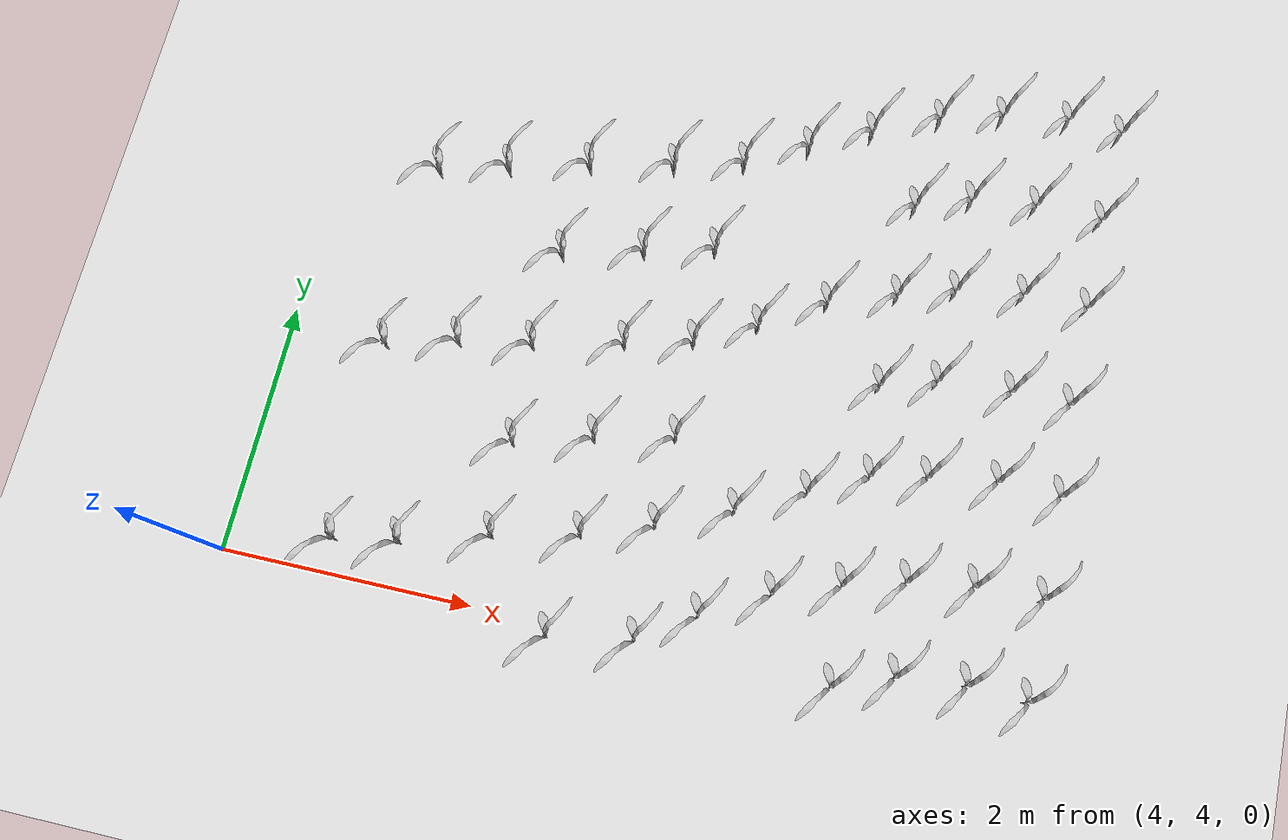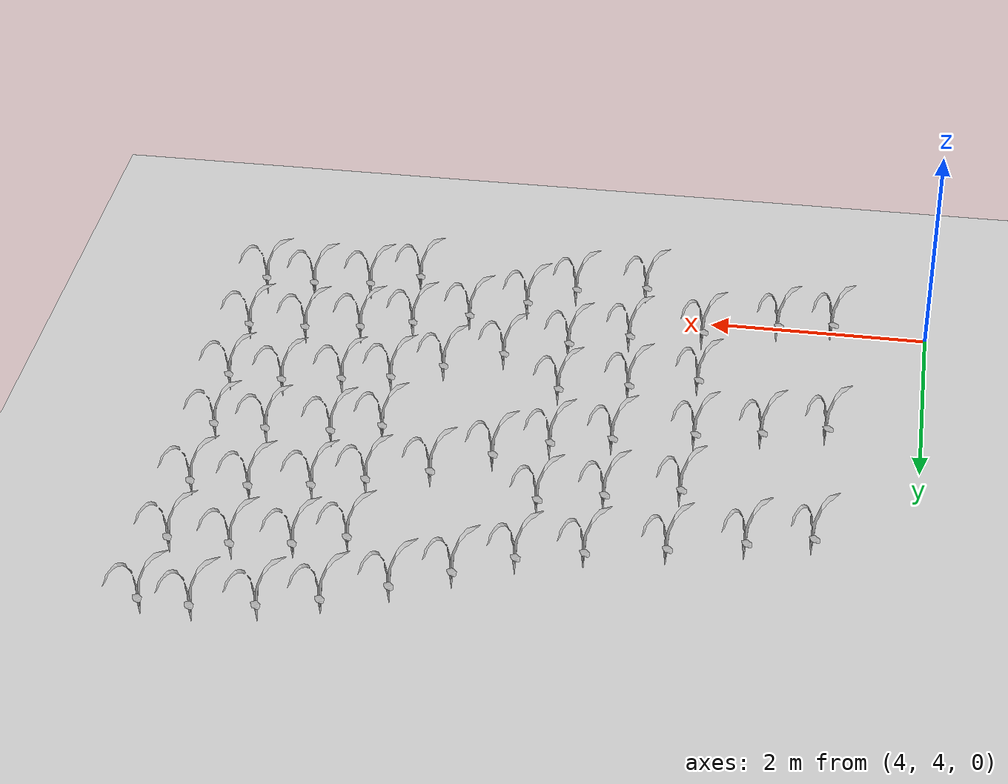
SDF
<sdf version="1.7">
 <world name="default">
  <model name="ground_plane">
   <static>1</static>
   <link name="link">
    <collision name="collision">
     <geometry><plane><normal>0 0 1</normal><size>100 100</size></plane></geometry>
     <surface><friction><ode><mu>100</mu><mu2>50</mu2></ode></friction></surface>
    </collision>
    <visual name="visual">
     <cast_shadows>0</cast_shadows>
     <geometry><plane><normal>0 0 1</normal><size>100 100</size></plane></geometry>
     <material>
      <script><uri>file://media/materials/scripts/gazebo.material</uri><name>Gazebo/Grey</name></script>
     </material>
    </visual>
   </link>
  </model>
  <model name="field_row_full_double">
   <model name="maize_02_clone_106">
    <pose>-0.685713 0.61283 0.000249 0 -0 0</pose>
    <link name="maize_02_link">
     <inertial>
      <pose>0 0 0.01 0 -0 0</pose>
      <mass>0.3</mass>
      <inertia>
       <ixx>0.00334167</ixx>
       <ixy>0</ixy>
       <ixz>0</ixz>
       <iyy>0.00334167</iyy>
       <iyz>0</iyz>
       <izz>1.66667e-05</izz>
      </inertia>
      <pose>0 0 0.1 0 -0 0</pose>
     </inertial>
     <collision name="collision">
      <pose>0 0 0.2 0 -0 0</pose>
      <geometry><box><size>0.02 0.02 0.4</size></box></geometry>
      <surface><friction><ode><mu>10</mu><mu2>10</mu2></ode></friction></surface>
     </collision>
     <visual name="visual">
      <geometry>
       <mesh><uri>model://maize_02/meshes/maize_02.dae</uri><scale>0.683166 0.683166 0.683166</scale></mesh>
      </geometry>
     </visual>
    </link>
   </model>
   <model name="maize_02_clone_107">
    <pose>-0.190713 0.69383 0.000249 0 -0 0</pose>
    <link name="maize_02_link">
     <inertial>
      <pose>0 0 0.01 0 -0 0</pose>
      <mass>0.3</mass>
      <inertia>
       <ixx>0.00334167</ixx>
       <ixy>0</ixy>
       <ixz>0</ixz>
       <iyy>0.00334167</iyy>
       <iyz>0</iyz>
       <izz>1.66667e-05</izz>
      </inertia>
      <pose>0 0 0.1 0 -0 0</pose>
     </inertial>
     <collision name="collision">
      <pose>0 0 0.2 0 -0 0</pose>
      <geometry><box><size>0.02 0.02 0.4</size></box></geometry>
      <surface><friction><ode><mu>10</mu><mu2>10</mu2></ode></friction></surface>
     </collision>
     <visual name="visual">
      <geometry>
       <mesh><uri>model://maize_02/meshes/maize_02.dae</uri><scale>0.683166 0.683166 0.683166</scale></mesh>
      </geometry>
     </visual>
    </link>
   </model>
   <model name="maize_02_clone_108">
    <pose>0.484286 0.89183 0.000249 0 -0 0</pose>
    <link name="maize_02_link">
     <inertial>
      <pose>0 0 0.01 0 -0 0</pose>
      <mass>0.3</mass>
      <inertia>
       <ixx>0.00334167</ixx>
       <ixy>0</ixy>
       <ixz>0</ixz>
       <iyy>0.00334167</iyy>
       <iyz>0</iyz>
       <izz>1.66667e-05</izz>
      </inertia>
      <pose>0 0 0.1 0 -0 0</pose>
     </inertial>
     <collision name="collision">
      <pose>0 0 0.2 0 -0 0</pose>
      <geometry><box><size>0.02 0.02 0.4</size></box></geometry>
      <surface><friction><ode><mu>10</mu><mu2>10</mu2></ode></friction></surface>
     </collision>
     <visual name="visual">
      <geometry>
       <mesh><uri>model://maize_02/meshes/maize_02.dae</uri><scale>0.683166 0.683166 0.683166</scale></mesh>
      </geometry>
     </visual>
    </link>
   </model>
   <model name="maize_02_clone_109">
    <pose>0.457287 1.62983 0.000249 0 -0 0</pose>
    <link name="maize_02_link">
     <inertial>
      <pose>0 0 0.01 0 -0 0</pose>
      <mass>0.3</mass>
      <inertia>
       <ixx>0.00334167</ixx>
       <ixy>0</ixy>
       <ixz>0</ixz>
       <iyy>0.00334167</iyy>
       <iyz>0</iyz>
       <izz>1.66667e-05</izz>
      </inertia>
      <pose>0 0 0.1 0 -0 0</pose>
     </inertial>
     <collision name="collision">
      <pose>0 0 0.2 0 -0 0</pose>
      <geometry><box><size>0.02 0.02 0.4</size></box></geometry>
      <surface><friction><ode><mu>10</mu><mu2>10</mu2></ode></friction></surface>
     </collision>
     <visual name="visual">
      <geometry>
       <mesh><uri>model://maize_02/meshes/maize_02.dae</uri><scale>0.683166 0.683166 0.683166</scale></mesh>
      </geometry>
     </visual>
    </link>
   </model>
   <model name="maize_02_clone_116">
    <pose>0.412287 2.42183 0.000249 0 -0 0</pose>
    <link name="maize_02_link">
     <inertial>
      <pose>0 0 0.01 0 -0 0</pose>
      <mass>0.3</mass>
      <inertia>
       <ixx>0.00334167</ixx>
       <ixy>0</ixy>
       <ixz>0</ixz>
       <iyy>0.00334167</iyy>
       <iyz>0</iyz>
       <izz>1.66667e-05</izz>
      </inertia>
      <pose>0 0 0.1 0 -0 0</pose>
     </inertial>
     <collision name="collision">
      <pose>0 0 0.2 0 -0 0</pose>
      <geometry><box><size>0.02 0.02 0.4</size></box></geometry>
      <surface><friction><ode><mu>10</mu><mu2>10</mu2></ode></friction></surface>
     </collision>
     <visual name="visual">
      <geometry>
       <mesh><uri>model://maize_02/meshes/maize_02.dae</uri><scale>0.683166 0.683166 0.683166</scale></mesh>
      </geometry>
     </visual>
    </link>
   </model>
   <model name="maize_02_clone_117">
    <pose>-0.163713 2.32283 0.000249 0 -0 0</pose>
    <link name="maize_02_link">
     <inertial>
      <pose>0 0 0.01 0 -0 0</pose>
      <mass>0.3</mass>
      <inertia>
       <ixx>0.00334167</ixx>
       <ixy>0</ixy>
       <ixz>0</ixz>
       <iyy>0.00334167</iyy>
       <iyz>0</iyz>
       <izz>1.66667e-05</izz>
      </inertia>
      <pose>0 0 0.1 0 -0 0</pose>
     </inertial>
     <collision name="collision">
      <pose>0 0 0.2 0 -0 0</pose>
      <geometry><box><size>0.02 0.02 0.4</size></box></geometry>
      <surface><friction><ode><mu>10</mu><mu2>10</mu2></ode></friction></surface>
     </collision>
     <visual name="visual">
      <geometry>
       <mesh><uri>model://maize_02/meshes/maize_02.dae</uri><scale>0.683166 0.683166 0.683166</scale></mesh>
      </geometry>
     </visual>
    </link>
   </model>
   <model name="maize_02_clone_118">
    <pose>-0.721713 2.17883 0.000249 0 -0 0</pose>
    <link name="maize_02_link">
     <inertial>
      <pose>0 0 0.01 0 -0 0</pose>
      <mass>0.3</mass>
      <inertia>
       <ixx>0.00334167</ixx>
       <ixy>0</ixy>
       <ixz>0</ixz>
       <iyy>0.00334167</iyy>
       <iyz>0</iyz>
       <izz>1.66667e-05</izz>
      </inertia>
      <pose>0 0 0.1 0 -0 0</pose>
     </inertial>
     <collision name="collision">
      <pose>0 0 0.2 0 -0 0</pose>
      <geometry><box><size>0.02 0.02 0.4</size></box></geometry>
      <surface><friction><ode><mu>10</mu><mu2>10</mu2></ode></friction></surface>
     </collision>
     <visual name="visual">
      <geometry>
       <mesh><uri>model://maize_02/meshes/maize_02.dae</uri><scale>0.683166 0.683166 0.683166</scale></mesh>
      </geometry>
     </visual>
    </link>
   </model>
   <model name="maize_02_clone_130">
    <pose>0.457288 3.20483 0.000249 0 -0 0</pose>
    <link name="maize_02_link">
     <inertial>
      <pose>0 0 0.01 0 -0 0</pose>
      <mass>0.3</mass>
      <inertia>
       <ixx>0.00334167</ixx>
       <ixy>0</ixy>
       <ixz>0</ixz>
       <iyy>0.00334167</iyy>
       <iyz>0</iyz>
       <izz>1.66667e-05</izz>
      </inertia>
      <pose>0 0 0.1 0 -0 0</pose>
     </inertial>
     <collision name="collision">
      <pose>0 0 0.2 0 -0 0</pose>
      <geometry><box><size>0.02 0.02 0.4</size></box></geometry>
      <surface><friction><ode><mu>10</mu><mu2>10</mu2></ode></friction></surface>
     </collision>
     <visual name="visual">
      <geometry>
       <mesh><uri>model://maize_02/meshes/maize_02.dae</uri><scale>0.683166 0.683166 0.683166</scale></mesh>
      </geometry>
     </visual>
    </link>
   </model>
   <model name="maize_02_clone_131">
    <pose>0.493288 3.98783 0.000249 0 -0 0</pose>
    <link name="maize_02_link">
     <inertial>
      <pose>0 0 0.01 0 -0 0</pose>
      <mass>0.3</mass>
      <inertia>
       <ixx>0.00334167</ixx>
       <ixy>0</ixy>
       <ixz>0</ixz>
       <iyy>0.00334167</iyy>
       <iyz>0</iyz>
       <izz>1.66667e-05</izz>
      </inertia>
      <pose>0 0 0.1 0 -0 0</pose>
     </inertial>
     <collision name="collision">
      <pose>0 0 0.2 0 -0 0</pose>
      <geometry><box><size>0.02 0.02 0.4</size></box></geometry>
      <surface><friction><ode><mu>10</mu><mu2>10</mu2></ode></friction></surface>
     </collision>
     <visual name="visual">
      <geometry>
       <mesh><uri>model://maize_02/meshes/maize_02.dae</uri><scale>0.683166 0.683166 0.683166</scale></mesh>
      </geometry>
     </visual>
    </link>
   </model>
   <model name="maize_02_clone_132">
    <pose>-0.145712 3.82583 0.000249 0 -0 0</pose>
    <link name="maize_02_link">
     <inertial>
      <pose>0 0 0.01 0 -0 0</pose>
      <mass>0.3</mass>
      <inertia>
       <ixx>0.00334167</ixx>
       <ixy>0</ixy>
       <ixz>0</ixz>
       <iyy>0.00334167</iyy>
       <iyz>0</iyz>
       <izz>1.66667e-05</izz>
      </inertia>
      <pose>0 0 0.1 0 -0 0</pose>
     </inertial>
     <collision name="collision">
      <pose>0 0 0.2 0 -0 0</pose>
      <geometry><box><size>0.02 0.02 0.4</size></box></geometry>
      <surface><friction><ode><mu>10</mu><mu2>10</mu2></ode></friction></surface>
     </collision>
     <visual name="visual">
      <geometry>
       <mesh><uri>model://maize_02/meshes/maize_02.dae</uri><scale>0.683166 0.683166 0.683166</scale></mesh>
      </geometry>
     </visual>
    </link>
   </model>
   <model name="maize_02_clone_133">
    <pose>-0.694712 3.69083 0.000249 0 -0 0</pose>
    <link name="maize_02_link">
     <inertial>
      <pose>0 0 0.01 0 -0 0</pose>
      <mass>0.3</mass>
      <inertia>
       <ixx>0.00334167</ixx>
       <ixy>0</ixy>
       <ixz>0</ixz>
       <iyy>0.00334167</iyy>
       <iyz>0</iyz>
       <izz>1.66667e-05</izz>
      </inertia>
      <pose>0 0 0.1 0 -0 0</pose>
     </inertial>
     <collision name="collision">
      <pose>0 0 0.2 0 -0 0</pose>
      <geometry><box><size>0.02 0.02 0.4</size></box></geometry>
      <surface><friction><ode><mu>10</mu><mu2>10</mu2></ode></friction></surface>
     </collision>
     <visual name="visual">
      <geometry>
       <mesh><uri>model://maize_02/meshes/maize_02.dae</uri><scale>0.683166 0.683166 0.683166</scale></mesh>
      </geometry>
     </visual>
    </link>
   </model>
   <model name="maize_02_clone_148">
    <pose>4.64514 0.576773 0.000249 0 -0 0</pose>
    <link name="maize_02_link">
     <inertial>
      <pose>0 0 0.01 0 -0 0</pose>
      <mass>0.3</mass>
      <inertia>
       <ixx>0.00334167</ixx>
       <ixy>0</ixy>
       <ixz>0</ixz>
       <iyy>0.00334167</iyy>
       <iyz>0</iyz>
       <izz>1.66667e-05</izz>
      </inertia>
      <pose>0 0 0.1 0 -0 0</pose>
     </inertial>
     <collision name="collision">
      <pose>0 0 0.2 0 -0 0</pose>
      <geometry><box><size>0.02 0.02 0.4</size></box></geometry>
      <surface><friction><ode><mu>10</mu><mu2>10</mu2></ode></friction></surface>
     </collision>
     <visual name="visual">
      <geometry>
       <mesh><uri>model://maize_02/meshes/maize_02.dae</uri><scale>0.683166 0.683166 0.683166</scale></mesh>
      </geometry>
     </visual>
    </link>
   </model>
   <model name="maize_02_clone_149">
    <pose>4.18693 0.594063 0.000249 0 -0 0</pose>
    <link name="maize_02_link">
     <inertial>
      <pose>0 0 0.01 0 -0 0</pose>
      <mass>0.3</mass>
      <inertia>
       <ixx>0.00334167</ixx>
       <ixy>0</ixy>
       <ixz>0</ixz>
       <iyy>0.00334167</iyy>
       <iyz>0</iyz>
       <izz>1.66667e-05</izz>
      </inertia>
      <pose>0 0 0.1 0 -0 0</pose>
     </inertial>
     <collision name="collision">
      <pose>0 0 0.2 0 -0 0</pose>
      <geometry><box><size>0.02 0.02 0.4</size></box></geometry>
      <surface><friction><ode><mu>10</mu><mu2>10</mu2></ode></friction></surface>
     </collision>
     <visual name="visual">
      <geometry>
       <mesh><uri>model://maize_02/meshes/maize_02.dae</uri><scale>0.683166 0.683166 0.683166</scale></mesh>
      </geometry>
     </visual>
    </link>
   </model>
   <model name="maize_02_clone_150">
    <pose>3.65957 0.533546 0.000249 0 -0 0</pose>
    <link name="maize_02_link">
     <inertial>
      <pose>0 0 0.01 0 -0 0</pose>
      <mass>0.3</mass>
      <inertia>
       <ixx>0.00334167</ixx>
       <ixy>0</ixy>
       <ixz>0</ixz>
       <iyy>0.00334167</iyy>
       <iyz>0</iyz>
       <izz>1.66667e-05</izz>
      </inertia>
      <pose>0 0 0.1 0 -0 0</pose>
     </inertial>
     <collision name="collision">
      <pose>0 0 0.2 0 -0 0</pose>
      <geometry><box><size>0.02 0.02 0.4</size></box></geometry>
      <surface><friction><ode><mu>10</mu><mu2>10</mu2></ode></friction></surface>
     </collision>
     <visual name="visual">
      <geometry>
       <mesh><uri>model://maize_02/meshes/maize_02.dae</uri><scale>0.683166 0.683166 0.683166</scale></mesh>
      </geometry>
     </visual>
    </link>
   </model>
   <model name="maize_02_clone_151">
    <pose>3.21001 0.360639 0.000249 0 -0 0</pose>
    <link name="maize_02_link">
     <inertial>
      <pose>0 0 0.01 0 -0 0</pose>
      <mass>0.3</mass>
      <inertia>
       <ixx>0.00334167</ixx>
       <ixy>0</ixy>
       <ixz>0</ixz>
       <iyy>0.00334167</iyy>
       <iyz>0</iyz>
       <izz>1.66667e-05</izz>
      </inertia>
      <pose>0 0 0.1 0 -0 0</pose>
     </inertial>
     <collision name="collision">
      <pose>0 0 0.2 0 -0 0</pose>
      <geometry><box><size>0.02 0.02 0.4</size></box></geometry>
      <surface><friction><ode><mu>10</mu><mu2>10</mu2></ode></friction></surface>
     </collision>
     <visual name="visual">
      <geometry>
       <mesh><uri>model://maize_02/meshes/maize_02.dae</uri><scale>0.683166 0.683166 0.683166</scale></mesh>
      </geometry>
     </visual>
    </link>
   </model>
   <model name="maize_02_clone_154">
    <pose>1.0746 0.256896 0.000249 0 -0 0</pose>
    <link name="maize_02_link">
     <inertial>
      <pose>0 0 0.01 0 -0 0</pose>
      <mass>0.3</mass>
      <inertia>
       <ixx>0.00334167</ixx>
       <ixy>0</ixy>
       <ixz>0</ixz>
       <iyy>0.00334167</iyy>
       <iyz>0</iyz>
       <izz>1.66667e-05</izz>
      </inertia>
      <pose>0 0 0.1 0 -0 0</pose>
     </inertial>
     <collision name="collision">
      <pose>0 0 0.2 0 -0 0</pose>
      <geometry><box><size>0.02 0.02 0.4</size></box></geometry>
      <surface><friction><ode><mu>10</mu><mu2>10</mu2></ode></friction></surface>
     </collision>
     <visual name="visual">
      <geometry>
       <mesh><uri>model://maize_02/meshes/maize_02.dae</uri><scale>0.683166 0.683166 0.683166</scale></mesh>
      </geometry>
     </visual>
    </link>
   </model>
   <model name="maize_02_clone_155">
    <pose>1.72301 0.369285 0.000249 0 -0 0</pose>
    <link name="maize_02_link">
     <inertial>
      <pose>0 0 0.01 0 -0 0</pose>
      <mass>0.3</mass>
      <inertia>
       <ixx>0.00334167</ixx>
       <ixy>0</ixy>
       <ixz>0</ixz>
       <iyy>0.00334167</iyy>
       <iyz>0</iyz>
       <izz>1.66667e-05</izz>
      </inertia>
      <pose>0 0 0.1 0 -0 0</pose>
     </inertial>
     <collision name="collision">
      <pose>0 0 0.2 0 -0 0</pose>
      <geometry><box><size>0.02 0.02 0.4</size></box></geometry>
      <surface><friction><ode><mu>10</mu><mu2>10</mu2></ode></friction></surface>
     </collision>
     <visual name="visual">
      <geometry>
       <mesh><uri>model://maize_02/meshes/maize_02.dae</uri><scale>0.683166 0.683166 0.683166</scale></mesh>
      </geometry>
     </visual>
    </link>
   </model>
   <model name="maize_02_clone_156">
    <pose>2.14663 0.645937 0.000249 0 -0 0</pose>
    <link name="maize_02_link">
     <inertial>
      <pose>0 0 0.01 0 -0 0</pose>
      <mass>0.3</mass>
      <inertia>
       <ixx>0.00334167</ixx>
       <ixy>0</ixy>
       <ixz>0</ixz>
       <iyy>0.00334167</iyy>
       <iyz>0</iyz>
       <izz>1.66667e-05</izz>
      </inertia>
      <pose>0 0 0.1 0 -0 0</pose>
     </inertial>
     <collision name="collision">
      <pose>0 0 0.2 0 -0 0</pose>
      <geometry><box><size>0.02 0.02 0.4</size></box></geometry>
      <surface><friction><ode><mu>10</mu><mu2>10</mu2></ode></friction></surface>
     </collision>
     <visual name="visual">
      <geometry>
       <mesh><uri>model://maize_02/meshes/maize_02.dae</uri><scale>0.683166 0.683166 0.683166</scale></mesh>
      </geometry>
     </visual>
    </link>
   </model>
   <model name="maize_02_clone_157">
    <pose>2.64806 0.922587 0.000249 0 -0 0</pose>
    <link name="maize_02_link">
     <inertial>
      <pose>0 0 0.01 0 -0 0</pose>
      <mass>0.3</mass>
      <inertia>
       <ixx>0.00334167</ixx>
       <ixy>0</ixy>
       <ixz>0</ixz>
       <iyy>0.00334167</iyy>
       <iyz>0</iyz>
       <izz>1.66667e-05</izz>
      </inertia>
      <pose>0 0 0.1 0 -0 0</pose>
     </inertial>
     <collision name="collision">
      <pose>0 0 0.2 0 -0 0</pose>
      <geometry><box><size>0.02 0.02 0.4</size></box></geometry>
      <surface><friction><ode><mu>10</mu><mu2>10</mu2></ode></friction></surface>
     </collision>
     <visual name="visual">
      <geometry>
       <mesh><uri>model://maize_02/meshes/maize_02.dae</uri><scale>0.683166 0.683166 0.683166</scale></mesh>
      </geometry>
     </visual>
    </link>
   </model>
   <model name="maize_02_clone_158">
    <pose>3.14949 1.10414 0.000249 0 -0 0</pose>
    <link name="maize_02_link">
     <inertial>
      <pose>0 0 0.01 0 -0 0</pose>
      <mass>0.3</mass>
      <inertia>
       <ixx>0.00334167</ixx>
       <ixy>0</ixy>
       <ixz>0</ixz>
       <iyy>0.00334167</iyy>
       <iyz>0</iyz>
       <izz>1.66667e-05</izz>
      </inertia>
      <pose>0 0 0.1 0 -0 0</pose>
     </inertial>
     <collision name="collision">
      <pose>0 0 0.2 0 -0 0</pose>
      <geometry><box><size>0.02 0.02 0.4</size></box></geometry>
      <surface><friction><ode><mu>10</mu><mu2>10</mu2></ode></friction></surface>
     </collision>
     <visual name="visual">
      <geometry>
       <mesh><uri>model://maize_02/meshes/maize_02.dae</uri><scale>0.683166 0.683166 0.683166</scale></mesh>
      </geometry>
     </visual>
    </link>
   </model>
   <model name="maize_02_clone_159">
    <pose>3.61634 1.23382 0.000249 0 -0 0</pose>
    <link name="maize_02_link">
     <inertial>
      <pose>0 0 0.01 0 -0 0</pose>
      <mass>0.3</mass>
      <inertia>
       <ixx>0.00334167</ixx>
       <ixy>0</ixy>
       <ixz>0</ixz>
       <iyy>0.00334167</iyy>
       <iyz>0</iyz>
       <izz>1.66667e-05</izz>
      </inertia>
      <pose>0 0 0.1 0 -0 0</pose>
     </inertial>
     <collision name="collision">
      <pose>0 0 0.2 0 -0 0</pose>
      <geometry><box><size>0.02 0.02 0.4</size></box></geometry>
      <surface><friction><ode><mu>10</mu><mu2>10</mu2></ode></friction></surface>
     </collision>
     <visual name="visual">
      <geometry>
       <mesh><uri>model://maize_02/meshes/maize_02.dae</uri><scale>0.683166 0.683166 0.683166</scale></mesh>
      </geometry>
     </visual>
    </link>
   </model>
   <model name="maize_02_clone_160">
    <pose>4.11777 1.31163 0.000249 0 -0 0</pose>
    <link name="maize_02_link">
     <inertial>
      <pose>0 0 0.01 0 -0 0</pose>
      <mass>0.3</mass>
      <inertia>
       <ixx>0.00334167</ixx>
       <ixy>0</ixy>
       <ixz>0</ixz>
       <iyy>0.00334167</iyy>
       <iyz>0</iyz>
       <izz>1.66667e-05</izz>
      </inertia>
      <pose>0 0 0.1 0 -0 0</pose>
     </inertial>
     <collision name="collision">
      <pose>0 0 0.2 0 -0 0</pose>
      <geometry><box><size>0.02 0.02 0.4</size></box></geometry>
      <surface><friction><ode><mu>10</mu><mu2>10</mu2></ode></friction></surface>
     </collision>
     <visual name="visual">
      <geometry>
       <mesh><uri>model://maize_02/meshes/maize_02.dae</uri><scale>0.683166 0.683166 0.683166</scale></mesh>
      </geometry>
     </visual>
    </link>
   </model>
   <model name="maize_02_clone_161">
    <pose>4.63649 1.33756 0.000249 0 -0 0</pose>
    <link name="maize_02_link">
     <inertial>
      <pose>0 0 0.01 0 -0 0</pose>
      <mass>0.3</mass>
      <inertia>
       <ixx>0.00334167</ixx>
       <ixy>0</ixy>
       <ixz>0</ixz>
       <iyy>0.00334167</iyy>
       <iyz>0</iyz>
       <izz>1.66667e-05</izz>
      </inertia>
      <pose>0 0 0.1 0 -0 0</pose>
     </inertial>
     <collision name="collision">
      <pose>0 0 0.2 0 -0 0</pose>
      <geometry><box><size>0.02 0.02 0.4</size></box></geometry>
      <surface><friction><ode><mu>10</mu><mu2>10</mu2></ode></friction></surface>
     </collision>
     <visual name="visual">
      <geometry>
       <mesh><uri>model://maize_02/meshes/maize_02.dae</uri><scale>0.683166 0.683166 0.683166</scale></mesh>
      </geometry>
     </visual>
    </link>
   </model>
   <model name="maize_02_clone_162">
    <pose>4.63649 2.12429 0.000249 0 -0 0</pose>
    <link name="maize_02_link">
     <inertial>
      <pose>0 0 0.01 0 -0 0</pose>
      <mass>0.3</mass>
      <inertia>
       <ixx>0.00334167</ixx>
       <ixy>0</ixy>
       <ixz>0</ixz>
       <iyy>0.00334167</iyy>
       <iyz>0</iyz>
       <izz>1.66667e-05</izz>
      </inertia>
      <pose>0 0 0.1 0 -0 0</pose>
     </inertial>
     <collision name="collision">
      <pose>0 0 0.2 0 -0 0</pose>
      <geometry><box><size>0.02 0.02 0.4</size></box></geometry>
      <surface><friction><ode><mu>10</mu><mu2>10</mu2></ode></friction></surface>
     </collision>
     <visual name="visual">
      <geometry>
       <mesh><uri>model://maize_02/meshes/maize_02.dae</uri><scale>0.683166 0.683166 0.683166</scale></mesh>
      </geometry>
     </visual>
    </link>
   </model>
   <model name="maize_02_clone_163">
    <pose>4.15235 2.13294 0.000249 0 -0 0</pose>
    <link name="maize_02_link">
     <inertial>
      <pose>0 0 0.01 0 -0 0</pose>
      <mass>0.3</mass>
      <inertia>
       <ixx>0.00334167</ixx>
       <ixy>0</ixy>
       <ixz>0</ixz>
       <iyy>0.00334167</iyy>
       <iyz>0</iyz>
       <izz>1.66667e-05</izz>
      </inertia>
      <pose>0 0 0.1 0 -0 0</pose>
     </inertial>
     <collision name="collision">
      <pose>0 0 0.2 0 -0 0</pose>
      <geometry><box><size>0.02 0.02 0.4</size></box></geometry>
      <surface><friction><ode><mu>10</mu><mu2>10</mu2></ode></friction></surface>
     </collision>
     <visual name="visual">
      <geometry>
       <mesh><uri>model://maize_02/meshes/maize_02.dae</uri><scale>0.683166 0.683166 0.683166</scale></mesh>
      </geometry>
     </visual>
    </link>
   </model>
   <model name="maize_02_clone_164">
    <pose>3.62499 2.04648 0.000249 0 -0 0</pose>
    <link name="maize_02_link">
     <inertial>
      <pose>0 0 0.01 0 -0 0</pose>
      <mass>0.3</mass>
      <inertia>
       <ixx>0.00334167</ixx>
       <ixy>0</ixy>
       <ixz>0</ixz>
       <iyy>0.00334167</iyy>
       <iyz>0</iyz>
       <izz>1.66667e-05</izz>
      </inertia>
      <pose>0 0 0.1 0 -0 0</pose>
     </inertial>
     <collision name="collision">
      <pose>0 0 0.2 0 -0 0</pose>
      <geometry><box><size>0.02 0.02 0.4</size></box></geometry>
      <surface><friction><ode><mu>10</mu><mu2>10</mu2></ode></friction></surface>
     </collision>
     <visual name="visual">
      <geometry>
       <mesh><uri>model://maize_02/meshes/maize_02.dae</uri><scale>0.683166 0.683166 0.683166</scale></mesh>
      </geometry>
     </visual>
    </link>
   </model>
   <model name="maize_02_clone_165">
    <pose>3.19272 1.96003 0.000249 0 -0 0</pose>
    <link name="maize_02_link">
     <inertial>
      <pose>0 0 0.01 0 -0 0</pose>
      <mass>0.3</mass>
      <inertia>
       <ixx>0.00334167</ixx>
       <ixy>0</ixy>
       <ixz>0</ixz>
       <iyy>0.00334167</iyy>
       <iyz>0</iyz>
       <izz>1.66667e-05</izz>
      </inertia>
      <pose>0 0 0.1 0 -0 0</pose>
     </inertial>
     <collision name="collision">
      <pose>0 0 0.2 0 -0 0</pose>
      <geometry><box><size>0.02 0.02 0.4</size></box></geometry>
      <surface><friction><ode><mu>10</mu><mu2>10</mu2></ode></friction></surface>
     </collision>
     <visual name="visual">
      <geometry>
       <mesh><uri>model://maize_02/meshes/maize_02.dae</uri><scale>0.683166 0.683166 0.683166</scale></mesh>
      </geometry>
     </visual>
    </link>
   </model>
   <model name="maize_02_clone_166">
    <pose>2.7518 1.73525 0.000249 0 -0 0</pose>
    <link name="maize_02_link">
     <inertial>
      <pose>0 0 0.01 0 -0 0</pose>
      <mass>0.3</mass>
      <inertia>
       <ixx>0.00334167</ixx>
       <ixy>0</ixy>
       <ixz>0</ixz>
       <iyy>0.00334167</iyy>
       <iyz>0</iyz>
       <izz>1.66667e-05</izz>
      </inertia>
      <pose>0 0 0.1 0 -0 0</pose>
     </inertial>
     <collision name="collision">
      <pose>0 0 0.2 0 -0 0</pose>
      <geometry><box><size>0.02 0.02 0.4</size></box></geometry>
      <surface><friction><ode><mu>10</mu><mu2>10</mu2></ode></friction></surface>
     </collision>
     <visual name="visual">
      <geometry>
       <mesh><uri>model://maize_02/meshes/maize_02.dae</uri><scale>0.683166 0.683166 0.683166</scale></mesh>
      </geometry>
     </visual>
    </link>
   </model>
   <model name="maize_02_clone_167">
    <pose>2.24173 1.47589 0.000249 0 -0 0</pose>
    <link name="maize_02_link">
     <inertial>
      <pose>0 0 0.01 0 -0 0</pose>
      <mass>0.3</mass>
      <inertia>
       <ixx>0.00334167</ixx>
       <ixy>0</ixy>
       <ixz>0</ixz>
       <iyy>0.00334167</iyy>
       <iyz>0</iyz>
       <izz>1.66667e-05</izz>
      </inertia>
      <pose>0 0 0.1 0 -0 0</pose>
     </inertial>
     <collision name="collision">
      <pose>0 0 0.2 0 -0 0</pose>
      <geometry><box><size>0.02 0.02 0.4</size></box></geometry>
      <surface><friction><ode><mu>10</mu><mu2>10</mu2></ode></friction></surface>
     </collision>
     <visual name="visual">
      <geometry>
       <mesh><uri>model://maize_02/meshes/maize_02.dae</uri><scale>0.683166 0.683166 0.683166</scale></mesh>
      </geometry>
     </visual>
    </link>
   </model>
   <model name="maize_02_clone_168">
    <pose>1.67978 1.23382 0.000249 0 -0 0</pose>
    <link name="maize_02_link">
     <inertial>
      <pose>0 0 0.01 0 -0 0</pose>
      <mass>0.3</mass>
      <inertia>
       <ixx>0.00334167</ixx>
       <ixy>0</ixy>
       <ixz>0</ixz>
       <iyy>0.00334167</iyy>
       <iyz>0</iyz>
       <izz>1.66667e-05</izz>
      </inertia>
      <pose>0 0 0.1 0 -0 0</pose>
     </inertial>
     <collision name="collision">
      <pose>0 0 0.2 0 -0 0</pose>
      <geometry><box><size>0.02 0.02 0.4</size></box></geometry>
      <surface><friction><ode><mu>10</mu><mu2>10</mu2></ode></friction></surface>
     </collision>
     <visual name="visual">
      <geometry>
       <mesh><uri>model://maize_02/meshes/maize_02.dae</uri><scale>0.683166 0.683166 0.683166</scale></mesh>
      </geometry>
     </visual>
    </link>
   </model>
   <model name="maize_02_clone_169">
    <pose>1.14377 1.04362 0.000249 0 -0 0</pose>
    <link name="maize_02_link">
     <inertial>
      <pose>0 0 0.01 0 -0 0</pose>
      <mass>0.3</mass>
      <inertia>
       <ixx>0.00334167</ixx>
       <ixy>0</ixy>
       <ixz>0</ixz>
       <iyy>0.00334167</iyy>
       <iyz>0</iyz>
       <izz>1.66667e-05</izz>
      </inertia>
      <pose>0 0 0.1 0 -0 0</pose>
     </inertial>
     <collision name="collision">
      <pose>0 0 0.2 0 -0 0</pose>
      <geometry><box><size>0.02 0.02 0.4</size></box></geometry>
      <surface><friction><ode><mu>10</mu><mu2>10</mu2></ode></friction></surface>
     </collision>
     <visual name="visual">
      <geometry>
       <mesh><uri>model://maize_02/meshes/maize_02.dae</uri><scale>0.683166 0.683166 0.683166</scale></mesh>
      </geometry>
     </visual>
    </link>
   </model>
   <model name="maize_02_clone_170">
    <pose>1.06596 1.79577 0.000249 0 -0 0</pose>
    <link name="maize_02_link">
     <inertial>
      <pose>0 0 0.01 0 -0 0</pose>
      <mass>0.3</mass>
      <inertia>
       <ixx>0.00334167</ixx>
       <ixy>0</ixy>
       <ixz>0</ixz>
       <iyy>0.00334167</iyy>
       <iyz>0</iyz>
       <izz>1.66667e-05</izz>
      </inertia>
      <pose>0 0 0.1 0 -0 0</pose>
     </inertial>
     <collision name="collision">
      <pose>0 0 0.2 0 -0 0</pose>
      <geometry><box><size>0.02 0.02 0.4</size></box></geometry>
      <surface><friction><ode><mu>10</mu><mu2>10</mu2></ode></friction></surface>
     </collision>
     <visual name="visual">
      <geometry>
       <mesh><uri>model://maize_02/meshes/maize_02.dae</uri><scale>0.683166 0.683166 0.683166</scale></mesh>
      </geometry>
     </visual>
    </link>
   </model>
   <model name="maize_02_clone_171">
    <pose>1.67978 1.93409 0.000249 0 -0 0</pose>
    <link name="maize_02_link">
     <inertial>
      <pose>0 0 0.01 0 -0 0</pose>
      <mass>0.3</mass>
      <inertia>
       <ixx>0.00334167</ixx>
       <ixy>0</ixy>
       <ixz>0</ixz>
       <iyy>0.00334167</iyy>
       <iyz>0</iyz>
       <izz>1.66667e-05</izz>
      </inertia>
      <pose>0 0 0.1 0 -0 0</pose>
     </inertial>
     <collision name="collision">
      <pose>0 0 0.2 0 -0 0</pose>
      <geometry><box><size>0.02 0.02 0.4</size></box></geometry>
      <surface><friction><ode><mu>10</mu><mu2>10</mu2></ode></friction></surface>
     </collision>
     <visual name="visual">
      <geometry>
       <mesh><uri>model://maize_02/meshes/maize_02.dae</uri><scale>0.683166 0.683166 0.683166</scale></mesh>
      </geometry>
     </visual>
    </link>
   </model>
   <model name="maize_02_clone_172">
    <pose>3.1322 2.6776 0.000249 0 -0 0</pose>
    <link name="maize_02_link">
     <inertial>
      <pose>0 0 0.01 0 -0 0</pose>
      <mass>0.3</mass>
      <inertia>
       <ixx>0.00334167</ixx>
       <ixy>0</ixy>
       <ixz>0</ixz>
       <iyy>0.00334167</iyy>
       <iyz>0</iyz>
       <izz>1.66667e-05</izz>
      </inertia>
      <pose>0 0 0.1 0 -0 0</pose>
     </inertial>
     <collision name="collision">
      <pose>0 0 0.2 0 -0 0</pose>
      <geometry><box><size>0.02 0.02 0.4</size></box></geometry>
      <surface><friction><ode><mu>10</mu><mu2>10</mu2></ode></friction></surface>
     </collision>
     <visual name="visual">
      <geometry>
       <mesh><uri>model://maize_02/meshes/maize_02.dae</uri><scale>0.683166 0.683166 0.683166</scale></mesh>
      </geometry>
     </visual>
    </link>
   </model>
   <model name="maize_02_clone_173">
    <pose>3.56447 2.80728 0.000249 0 -0 0</pose>
    <link name="maize_02_link">
     <inertial>
      <pose>0 0 0.01 0 -0 0</pose>
      <mass>0.3</mass>
      <inertia>
       <ixx>0.00334167</ixx>
       <ixy>0</ixy>
       <ixz>0</ixz>
       <iyy>0.00334167</iyy>
       <iyz>0</iyz>
       <izz>1.66667e-05</izz>
      </inertia>
      <pose>0 0 0.1 0 -0 0</pose>
     </inertial>
     <collision name="collision">
      <pose>0 0 0.2 0 -0 0</pose>
      <geometry><box><size>0.02 0.02 0.4</size></box></geometry>
      <surface><friction><ode><mu>10</mu><mu2>10</mu2></ode></friction></surface>
     </collision>
     <visual name="visual">
      <geometry>
       <mesh><uri>model://maize_02/meshes/maize_02.dae</uri><scale>0.683166 0.683166 0.683166</scale></mesh>
      </geometry>
     </visual>
    </link>
   </model>
   <model name="maize_02_clone_174">
    <pose>4.13506 2.8505 0.000249 0 -0 0</pose>
    <link name="maize_02_link">
     <inertial>
      <pose>0 0 0.01 0 -0 0</pose>
      <mass>0.3</mass>
      <inertia>
       <ixx>0.00334167</ixx>
       <ixy>0</ixy>
       <ixz>0</ixz>
       <iyy>0.00334167</iyy>
       <iyz>0</iyz>
       <izz>1.66667e-05</izz>
      </inertia>
      <pose>0 0 0.1 0 -0 0</pose>
     </inertial>
     <collision name="collision">
      <pose>0 0 0.2 0 -0 0</pose>
      <geometry><box><size>0.02 0.02 0.4</size></box></geometry>
      <surface><friction><ode><mu>10</mu><mu2>10</mu2></ode></friction></surface>
     </collision>
     <visual name="visual">
      <geometry>
       <mesh><uri>model://maize_02/meshes/maize_02.dae</uri><scale>0.683166 0.683166 0.683166</scale></mesh>
      </geometry>
     </visual>
    </link>
   </model>
   <model name="maize_02_clone_175">
    <pose>4.59327 2.8505 0.000249 0 -0 0</pose>
    <link name="maize_02_link">
     <inertial>
      <pose>0 0 0.01 0 -0 0</pose>
      <mass>0.3</mass>
      <inertia>
       <ixx>0.00334167</ixx>
       <ixy>0</ixy>
       <ixz>0</ixz>
       <iyy>0.00334167</iyy>
       <iyz>0</iyz>
       <izz>1.66667e-05</izz>
      </inertia>
      <pose>0 0 0.1 0 -0 0</pose>
     </inertial>
     <collision name="collision">
      <pose>0 0 0.2 0 -0 0</pose>
      <geometry><box><size>0.02 0.02 0.4</size></box></geometry>
      <surface><friction><ode><mu>10</mu><mu2>10</mu2></ode></friction></surface>
     </collision>
     <visual name="visual">
      <geometry>
       <mesh><uri>model://maize_02/meshes/maize_02.dae</uri><scale>0.683166 0.683166 0.683166</scale></mesh>
      </geometry>
     </visual>
    </link>
   </model>
   <model name="maize_02_clone_176">
    <pose>4.60191 3.65452 0.000249 0 -0 0</pose>
    <link name="maize_02_link">
     <inertial>
      <pose>0 0 0.01 0 -0 0</pose>
      <mass>0.3</mass>
      <inertia>
       <ixx>0.00334167</ixx>
       <ixy>0</ixy>
       <ixz>0</ixz>
       <iyy>0.00334167</iyy>
       <iyz>0</iyz>
       <izz>1.66667e-05</izz>
      </inertia>
      <pose>0 0 0.1 0 -0 0</pose>
     </inertial>
     <collision name="collision">
      <pose>0 0 0.2 0 -0 0</pose>
      <geometry><box><size>0.02 0.02 0.4</size></box></geometry>
      <surface><friction><ode><mu>10</mu><mu2>10</mu2></ode></friction></surface>
     </collision>
     <visual name="visual">
      <geometry>
       <mesh><uri>model://maize_02/meshes/maize_02.dae</uri><scale>0.683166 0.683166 0.683166</scale></mesh>
      </geometry>
     </visual>
    </link>
   </model>
   <model name="maize_02_clone_177">
    <pose>4.10048 3.65452 0.000249 0 -0 0</pose>
    <link name="maize_02_link">
     <inertial>
      <pose>0 0 0.01 0 -0 0</pose>
      <mass>0.3</mass>
      <inertia>
       <ixx>0.00334167</ixx>
       <ixy>0</ixy>
       <ixz>0</ixz>
       <iyy>0.00334167</iyy>
       <iyz>0</iyz>
       <izz>1.66667e-05</izz>
      </inertia>
      <pose>0 0 0.1 0 -0 0</pose>
     </inertial>
     <collision name="collision">
      <pose>0 0 0.2 0 -0 0</pose>
      <geometry><box><size>0.02 0.02 0.4</size></box></geometry>
      <surface><friction><ode><mu>10</mu><mu2>10</mu2></ode></friction></surface>
     </collision>
     <visual name="visual">
      <geometry>
       <mesh><uri>model://maize_02/meshes/maize_02.dae</uri><scale>0.683166 0.683166 0.683166</scale></mesh>
      </geometry>
     </visual>
    </link>
   </model>
   <model name="maize_02_clone_178">
    <pose>3.57311 3.56807 0.000249 0 -0 0</pose>
    <link name="maize_02_link">
     <inertial>
      <pose>0 0 0.01 0 -0 0</pose>
      <mass>0.3</mass>
      <inertia>
       <ixx>0.00334167</ixx>
       <ixy>0</ixy>
       <ixz>0</ixz>
       <iyy>0.00334167</iyy>
       <iyz>0</iyz>
       <izz>1.66667e-05</izz>
      </inertia>
      <pose>0 0 0.1 0 -0 0</pose>
     </inertial>
     <collision name="collision">
      <pose>0 0 0.2 0 -0 0</pose>
      <geometry><box><size>0.02 0.02 0.4</size></box></geometry>
      <surface><friction><ode><mu>10</mu><mu2>10</mu2></ode></friction></surface>
     </collision>
     <visual name="visual">
      <geometry>
       <mesh><uri>model://maize_02/meshes/maize_02.dae</uri><scale>0.683166 0.683166 0.683166</scale></mesh>
      </geometry>
     </visual>
    </link>
   </model>
   <model name="maize_02_clone_179">
    <pose>3.1322 3.42974 0.000249 0 -0 0</pose>
    <link name="maize_02_link">
     <inertial>
      <pose>0 0 0.01 0 -0 0</pose>
      <mass>0.3</mass>
      <inertia>
       <ixx>0.00334167</ixx>
       <ixy>0</ixy>
       <ixz>0</ixz>
       <iyy>0.00334167</iyy>
       <iyz>0</iyz>
       <izz>1.66667e-05</izz>
      </inertia>
      <pose>0 0 0.1 0 -0 0</pose>
     </inertial>
     <collision name="collision">
      <pose>0 0 0.2 0 -0 0</pose>
      <geometry><box><size>0.02 0.02 0.4</size></box></geometry>
      <surface><friction><ode><mu>10</mu><mu2>10</mu2></ode></friction></surface>
     </collision>
     <visual name="visual">
      <geometry>
       <mesh><uri>model://maize_02/meshes/maize_02.dae</uri><scale>0.683166 0.683166 0.683166</scale></mesh>
      </geometry>
     </visual>
    </link>
   </model>
   <model name="maize_02_clone_180">
    <pose>2.60483 3.24819 0.000249 0 -0 0</pose>
    <link name="maize_02_link">
     <inertial>
      <pose>0 0 0.01 0 -0 0</pose>
      <mass>0.3</mass>
      <inertia>
       <ixx>0.00334167</ixx>
       <ixy>0</ixy>
       <ixz>0</ixz>
       <iyy>0.00334167</iyy>
       <iyz>0</iyz>
       <izz>1.66667e-05</izz>
      </inertia>
      <pose>0 0 0.1 0 -0 0</pose>
     </inertial>
     <collision name="collision">
      <pose>0 0 0.2 0 -0 0</pose>
      <geometry><box><size>0.02 0.02 0.4</size></box></geometry>
      <surface><friction><ode><mu>10</mu><mu2>10</mu2></ode></friction></surface>
     </collision>
     <visual name="visual">
      <geometry>
       <mesh><uri>model://maize_02/meshes/maize_02.dae</uri><scale>0.683166 0.683166 0.683166</scale></mesh>
      </geometry>
     </visual>
    </link>
   </model>
   <model name="maize_02_clone_181">
    <pose>2.11205 2.9456 0.000249 0 -0 0</pose>
    <link name="maize_02_link">
     <inertial>
      <pose>0 0 0.01 0 -0 0</pose>
      <mass>0.3</mass>
      <inertia>
       <ixx>0.00334167</ixx>
       <ixy>0</ixy>
       <ixz>0</ixz>
       <iyy>0.00334167</iyy>
       <iyz>0</iyz>
       <izz>1.66667e-05</izz>
      </inertia>
      <pose>0 0 0.1 0 -0 0</pose>
     </inertial>
     <collision name="collision">
      <pose>0 0 0.2 0 -0 0</pose>
      <geometry><box><size>0.02 0.02 0.4</size></box></geometry>
      <surface><friction><ode><mu>10</mu><mu2>10</mu2></ode></friction></surface>
     </collision>
     <visual name="visual">
      <geometry>
       <mesh><uri>model://maize_02/meshes/maize_02.dae</uri><scale>0.683166 0.683166 0.683166</scale></mesh>
      </geometry>
     </visual>
    </link>
   </model>
   <model name="maize_02_clone_182">
    <pose>1.6452 2.71218 0.000249 0 -0 0</pose>
    <link name="maize_02_link">
     <inertial>
      <pose>0 0 0.01 0 -0 0</pose>
      <mass>0.3</mass>
      <inertia>
       <ixx>0.00334167</ixx>
       <ixy>0</ixy>
       <ixz>0</ixz>
       <iyy>0.00334167</iyy>
       <iyz>0</iyz>
       <izz>1.66667e-05</izz>
      </inertia>
      <pose>0 0 0.1 0 -0 0</pose>
     </inertial>
     <collision name="collision">
      <pose>0 0 0.2 0 -0 0</pose>
      <geometry><box><size>0.02 0.02 0.4</size></box></geometry>
      <surface><friction><ode><mu>10</mu><mu2>10</mu2></ode></friction></surface>
     </collision>
     <visual name="visual">
      <geometry>
       <mesh><uri>model://maize_02/meshes/maize_02.dae</uri><scale>0.683166 0.683166 0.683166</scale></mesh>
      </geometry>
     </visual>
    </link>
   </model>
   <model name="maize_02_clone_183">
    <pose>1.11783 2.5825 0.000249 0 -0 0</pose>
    <link name="maize_02_link">
     <inertial>
      <pose>0 0 0.01 0 -0 0</pose>
      <mass>0.3</mass>
      <inertia>
       <ixx>0.00334167</ixx>
       <ixy>0</ixy>
       <ixz>0</ixz>
       <iyy>0.00334167</iyy>
       <iyz>0</iyz>
       <izz>1.66667e-05</izz>
      </inertia>
      <pose>0 0 0.1 0 -0 0</pose>
     </inertial>
     <collision name="collision">
      <pose>0 0 0.2 0 -0 0</pose>
      <geometry><box><size>0.02 0.02 0.4</size></box></geometry>
      <surface><friction><ode><mu>10</mu><mu2>10</mu2></ode></friction></surface>
     </collision>
     <visual name="visual">
      <geometry>
       <mesh><uri>model://maize_02/meshes/maize_02.dae</uri><scale>0.683166 0.683166 0.683166</scale></mesh>
      </geometry>
     </visual>
    </link>
   </model>
   <model name="maize_02_clone_184">
    <pose>1.0919 3.36058 0.000249 0 -0 0</pose>
    <link name="maize_02_link">
     <inertial>
      <pose>0 0 0.01 0 -0 0</pose>
      <mass>0.3</mass>
      <inertia>
       <ixx>0.00334167</ixx>
       <ixy>0</ixy>
       <ixz>0</ixz>
       <iyy>0.00334167</iyy>
       <iyz>0</iyz>
       <izz>1.66667e-05</izz>
      </inertia>
      <pose>0 0 0.1 0 -0 0</pose>
     </inertial>
     <collision name="collision">
      <pose>0 0 0.2 0 -0 0</pose>
      <geometry><box><size>0.02 0.02 0.4</size></box></geometry>
      <surface><friction><ode><mu>10</mu><mu2>10</mu2></ode></friction></surface>
     </collision>
     <visual name="visual">
      <geometry>
       <mesh><uri>model://maize_02/meshes/maize_02.dae</uri><scale>0.683166 0.683166 0.683166</scale></mesh>
      </geometry>
     </visual>
    </link>
   </model>
   <model name="maize_02_clone_185">
    <pose>1.6452 3.49891 0.000249 0 -0 0</pose>
    <link name="maize_02_link">
     <inertial>
      <pose>0 0 0.01 0 -0 0</pose>
      <mass>0.3</mass>
      <inertia>
       <ixx>0.00334167</ixx>
       <ixy>0</ixy>
       <ixz>0</ixz>
       <iyy>0.00334167</iyy>
       <iyz>0</iyz>
       <izz>1.66667e-05</izz>
      </inertia>
      <pose>0 0 0.1 0 -0 0</pose>
     </inertial>
     <collision name="collision">
      <pose>0 0 0.2 0 -0 0</pose>
      <geometry><box><size>0.02 0.02 0.4</size></box></geometry>
      <surface><friction><ode><mu>10</mu><mu2>10</mu2></ode></friction></surface>
     </collision>
     <visual name="visual">
      <geometry>
       <mesh><uri>model://maize_02/meshes/maize_02.dae</uri><scale>0.683166 0.683166 0.683166</scale></mesh>
      </geometry>
     </visual>
    </link>
   </model>
   <model name="maize_02_clone_186">
    <pose>3.1322 4.19918 0.000249 0 -0 0</pose>
    <link name="maize_02_link">
     <inertial>
      <pose>0 0 0.01 0 -0 0</pose>
      <mass>0.3</mass>
      <inertia>
       <ixx>0.00334167</ixx>
       <ixy>0</ixy>
       <ixz>0</ixz>
       <iyy>0.00334167</iyy>
       <iyz>0</iyz>
       <izz>1.66667e-05</izz>
      </inertia>
      <pose>0 0 0.1 0 -0 0</pose>
     </inertial>
     <collision name="collision">
      <pose>0 0 0.2 0 -0 0</pose>
      <geometry><box><size>0.02 0.02 0.4</size></box></geometry>
      <surface><friction><ode><mu>10</mu><mu2>10</mu2></ode></friction></surface>
     </collision>
     <visual name="visual">
      <geometry>
       <mesh><uri>model://maize_02/meshes/maize_02.dae</uri><scale>0.683166 0.683166 0.683166</scale></mesh>
      </geometry>
     </visual>
    </link>
   </model>
   <model name="maize_02_clone_187">
    <pose>3.56447 4.34615 0.000249 0 -0 0</pose>
    <link name="maize_02_link">
     <inertial>
      <pose>0 0 0.01 0 -0 0</pose>
      <mass>0.3</mass>
      <inertia>
       <ixx>0.00334167</ixx>
       <ixy>0</ixy>
       <ixz>0</ixz>
       <iyy>0.00334167</iyy>
       <iyz>0</iyz>
       <izz>1.66667e-05</izz>
      </inertia>
      <pose>0 0 0.1 0 -0 0</pose>
     </inertial>
     <collision name="collision">
      <pose>0 0 0.2 0 -0 0</pose>
      <geometry><box><size>0.02 0.02 0.4</size></box></geometry>
      <surface><friction><ode><mu>10</mu><mu2>10</mu2></ode></friction></surface>
     </collision>
     <visual name="visual">
      <geometry>
       <mesh><uri>model://maize_02/meshes/maize_02.dae</uri><scale>0.683166 0.683166 0.683166</scale></mesh>
      </geometry>
     </visual>
    </link>
   </model>
   <model name="maize_02_clone_188">
    <pose>4.07454 4.41531 0.000249 0 -0 0</pose>
    <link name="maize_02_link">
     <inertial>
      <pose>0 0 0.01 0 -0 0</pose>
      <mass>0.3</mass>
      <inertia>
       <ixx>0.00334167</ixx>
       <ixy>0</ixy>
       <ixz>0</ixz>
       <iyy>0.00334167</iyy>
       <iyz>0</iyz>
       <izz>1.66667e-05</izz>
      </inertia>
      <pose>0 0 0.1 0 -0 0</pose>
     </inertial>
     <collision name="collision">
      <pose>0 0 0.2 0 -0 0</pose>
      <geometry><box><size>0.02 0.02 0.4</size></box></geometry>
      <surface><friction><ode><mu>10</mu><mu2>10</mu2></ode></friction></surface>
     </collision>
     <visual name="visual">
      <geometry>
       <mesh><uri>model://maize_02/meshes/maize_02.dae</uri><scale>0.683166 0.683166 0.683166</scale></mesh>
      </geometry>
     </visual>
    </link>
   </model>
   <model name="maize_02_clone_189">
    <pose>4.60191 4.40667 0.000249 0 -0 0</pose>
    <link name="maize_02_link">
     <inertial>
      <pose>0 0 0.01 0 -0 0</pose>
      <mass>0.3</mass>
      <inertia>
       <ixx>0.00334167</ixx>
       <ixy>0</ixy>
       <ixz>0</ixz>
       <iyy>0.00334167</iyy>
       <iyz>0</iyz>
       <izz>1.66667e-05</izz>
      </inertia>
      <pose>0 0 0.1 0 -0 0</pose>
     </inertial>
     <collision name="collision">
      <pose>0 0 0.2 0 -0 0</pose>
      <geometry><box><size>0.02 0.02 0.4</size></box></geometry>
      <surface><friction><ode><mu>10</mu><mu2>10</mu2></ode></friction></surface>
     </collision>
     <visual name="visual">
      <geometry>
       <mesh><uri>model://maize_02/meshes/maize_02.dae</uri><scale>0.683166 0.683166 0.683166</scale></mesh>
      </geometry>
     </visual>
    </link>
   </model>
   <model name="maize_02_clone_190">
    <pose>4.64514 5.18475 0.000249 0 -0 0</pose>
    <link name="maize_02_link">
     <inertial>
      <pose>0 0 0.01 0 -0 0</pose>
      <mass>0.3</mass>
      <inertia>
       <ixx>0.00334167</ixx>
       <ixy>0</ixy>
       <ixz>0</ixz>
       <iyy>0.00334167</iyy>
       <iyz>0</iyz>
       <izz>1.66667e-05</izz>
      </inertia>
      <pose>0 0 0.1 0 -0 0</pose>
     </inertial>
     <collision name="collision">
      <pose>0 0 0.2 0 -0 0</pose>
      <geometry><box><size>0.02 0.02 0.4</size></box></geometry>
      <surface><friction><ode><mu>10</mu><mu2>10</mu2></ode></friction></surface>
     </collision>
     <visual name="visual">
      <geometry>
       <mesh><uri>model://maize_02/meshes/maize_02.dae</uri><scale>0.683166 0.683166 0.683166</scale></mesh>
      </geometry>
     </visual>
    </link>
   </model>
   <model name="maize_02_clone_191">
    <pose>4.21287 5.21069 0.000249 0 -0 0</pose>
    <link name="maize_02_link">
     <inertial>
      <pose>0 0 0.01 0 -0 0</pose>
      <mass>0.3</mass>
      <inertia>
       <ixx>0.00334167</ixx>
       <ixy>0</ixy>
       <ixz>0</ixz>
       <iyy>0.00334167</iyy>
       <iyz>0</iyz>
       <izz>1.66667e-05</izz>
      </inertia>
      <pose>0 0 0.1 0 -0 0</pose>
     </inertial>
     <collision name="collision">
      <pose>0 0 0.2 0 -0 0</pose>
      <geometry><box><size>0.02 0.02 0.4</size></box></geometry>
      <surface><friction><ode><mu>10</mu><mu2>10</mu2></ode></friction></surface>
     </collision>
     <visual name="visual">
      <geometry>
       <mesh><uri>model://maize_02/meshes/maize_02.dae</uri><scale>0.683166 0.683166 0.683166</scale></mesh>
      </geometry>
     </visual>
    </link>
   </model>
   <model name="maize_02_clone_192">
    <pose>3.6855 5.13288 0.000249 0 -0 0</pose>
    <link name="maize_02_link">
     <inertial>
      <pose>0 0 0.01 0 -0 0</pose>
      <mass>0.3</mass>
      <inertia>
       <ixx>0.00334167</ixx>
       <ixy>0</ixy>
       <ixz>0</ixz>
       <iyy>0.00334167</iyy>
       <iyz>0</iyz>
       <izz>1.66667e-05</izz>
      </inertia>
      <pose>0 0 0.1 0 -0 0</pose>
     </inertial>
     <collision name="collision">
      <pose>0 0 0.2 0 -0 0</pose>
      <geometry><box><size>0.02 0.02 0.4</size></box></geometry>
      <surface><friction><ode><mu>10</mu><mu2>10</mu2></ode></friction></surface>
     </collision>
     <visual name="visual">
      <geometry>
       <mesh><uri>model://maize_02/meshes/maize_02.dae</uri><scale>0.683166 0.683166 0.683166</scale></mesh>
      </geometry>
     </visual>
    </link>
   </model>
   <model name="maize_02_clone_193">
    <pose>3.19272 4.99455 0.000249 0 -0 0</pose>
    <link name="maize_02_link">
     <inertial>
      <pose>0 0 0.01 0 -0 0</pose>
      <mass>0.3</mass>
      <inertia>
       <ixx>0.00334167</ixx>
       <ixy>0</ixy>
       <ixz>0</ixz>
       <iyy>0.00334167</iyy>
       <iyz>0</iyz>
       <izz>1.66667e-05</izz>
      </inertia>
      <pose>0 0 0.1 0 -0 0</pose>
     </inertial>
     <collision name="collision">
      <pose>0 0 0.2 0 -0 0</pose>
      <geometry><box><size>0.02 0.02 0.4</size></box></geometry>
      <surface><friction><ode><mu>10</mu><mu2>10</mu2></ode></friction></surface>
     </collision>
     <visual name="visual">
      <geometry>
       <mesh><uri>model://maize_02/meshes/maize_02.dae</uri><scale>0.683166 0.683166 0.683166</scale></mesh>
      </geometry>
     </visual>
    </link>
   </model>
   <model name="maize_02_clone_194">
    <pose>2.674 4.76113 0.000249 0 -0 0</pose>
    <link name="maize_02_link">
     <inertial>
      <pose>0 0 0.01 0 -0 0</pose>
      <mass>0.3</mass>
      <inertia>
       <ixx>0.00334167</ixx>
       <ixy>0</ixy>
       <ixz>0</ixz>
       <iyy>0.00334167</iyy>
       <iyz>0</iyz>
       <izz>1.66667e-05</izz>
      </inertia>
      <pose>0 0 0.1 0 -0 0</pose>
     </inertial>
     <collision name="collision">
      <pose>0 0 0.2 0 -0 0</pose>
      <geometry><box><size>0.02 0.02 0.4</size></box></geometry>
      <surface><friction><ode><mu>10</mu><mu2>10</mu2></ode></friction></surface>
     </collision>
     <visual name="visual">
      <geometry>
       <mesh><uri>model://maize_02/meshes/maize_02.dae</uri><scale>0.683166 0.683166 0.683166</scale></mesh>
      </geometry>
     </visual>
    </link>
   </model>
   <model name="maize_02_clone_195">
    <pose>2.1985 4.51906 0.000249 0 -0 0</pose>
    <link name="maize_02_link">
     <inertial>
      <pose>0 0 0.01 0 -0 0</pose>
      <mass>0.3</mass>
      <inertia>
       <ixx>0.00334167</ixx>
       <ixy>0</ixy>
       <ixz>0</ixz>
       <iyy>0.00334167</iyy>
       <iyz>0</iyz>
       <izz>1.66667e-05</izz>
      </inertia>
      <pose>0 0 0.1 0 -0 0</pose>
     </inertial>
     <collision name="collision">
      <pose>0 0 0.2 0 -0 0</pose>
      <geometry><box><size>0.02 0.02 0.4</size></box></geometry>
      <surface><friction><ode><mu>10</mu><mu2>10</mu2></ode></friction></surface>
     </collision>
     <visual name="visual">
      <geometry>
       <mesh><uri>model://maize_02/meshes/maize_02.dae</uri><scale>0.683166 0.683166 0.683166</scale></mesh>
      </geometry>
     </visual>
    </link>
   </model>
   <model name="maize_02_clone_196">
    <pose>1.71436 4.26834 0.000249 0 -0 0</pose>
    <link name="maize_02_link">
     <inertial>
      <pose>0 0 0.01 0 -0 0</pose>
      <mass>0.3</mass>
      <inertia>
       <ixx>0.00334167</ixx>
       <ixy>0</ixy>
       <ixz>0</ixz>
       <iyy>0.00334167</iyy>
       <iyz>0</iyz>
       <izz>1.66667e-05</izz>
      </inertia>
      <pose>0 0 0.1 0 -0 0</pose>
     </inertial>
     <collision name="collision">
      <pose>0 0 0.2 0 -0 0</pose>
      <geometry><box><size>0.02 0.02 0.4</size></box></geometry>
      <surface><friction><ode><mu>10</mu><mu2>10</mu2></ode></friction></surface>
     </collision>
     <visual name="visual">
      <geometry>
       <mesh><uri>model://maize_02/meshes/maize_02.dae</uri><scale>0.683166 0.683166 0.683166</scale></mesh>
      </geometry>
     </visual>
    </link>
   </model>
   <model name="maize_02_clone_197">
    <pose>1.16106 4.13002 0.000249 0 -0 0</pose>
    <link name="maize_02_link">
     <inertial>
      <pose>0 0 0.01 0 -0 0</pose>
      <mass>0.3</mass>
      <inertia>
       <ixx>0.00334167</ixx>
       <ixy>0</ixy>
       <ixz>0</ixz>
       <iyy>0.00334167</iyy>
       <iyz>0</iyz>
       <izz>1.66667e-05</izz>
      </inertia>
      <pose>0 0 0.1 0 -0 0</pose>
     </inertial>
     <collision name="collision">
      <pose>0 0 0.2 0 -0 0</pose>
      <geometry><box><size>0.02 0.02 0.4</size></box></geometry>
      <surface><friction><ode><mu>10</mu><mu2>10</mu2></ode></friction></surface>
     </collision>
     <visual name="visual">
      <geometry>
       <mesh><uri>model://maize_02/meshes/maize_02.dae</uri><scale>0.683166 0.683166 0.683166</scale></mesh>
      </geometry>
     </visual>
    </link>
   </model>
   <static>0</static>
   <pose>5.56713 3.64301 0.082023 -0 -3e-06 -0.000638</pose>
  </model>
 </world>
</sdf>
